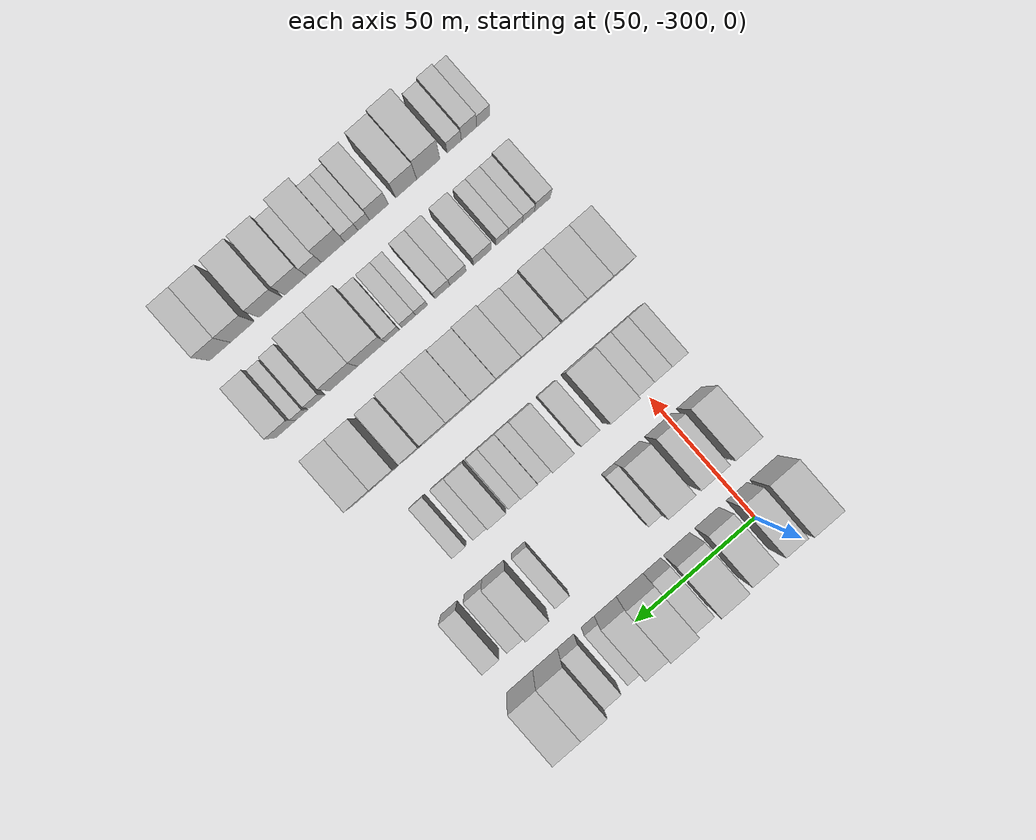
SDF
<sdf version="1.6">
 <world name="default">
  <model name="building_22">
   <static>1</static>
   <pose>50.0000 -312.4262 0 0.000000 0.000000 0.000000</pose>
   <link name="link">
    <pose>0 0 12.00 0 0 0</pose>
    <collision name="collision"><geometry><box><size>20.0000 11.8110 24.0000</size></box></geometry></collision>
    <visual name="visual">
     <cast_shadows>0</cast_shadows>
     <geometry><box><size>20.0000 11.8110 24.0000</size></box></geometry>
     <material>
      <script>
       <uri>model://HANNAS_wall/materials/scripts</uri>
       <uri>model://HANNAS_wall/materials/textures</uri>
       <name>vrc/HANNAS_wall</name>
      </script>
     </material>
    </visual>
   </link>
  </model>
  <model name="building_23">
   <static>1</static>
   <pose>50.0000 -301.1140 0 0.000000 0.000000 0.000000</pose>
   <link name="link">
    <pose>0 0 10.50 0 0 0</pose>
    <collision name="collision"><geometry><box><size>20.0000 8.8135 21.0000</size></box></geometry></collision>
    <visual name="visual">
     <cast_shadows>0</cast_shadows>
     <geometry><box><size>20.0000 8.8135 21.0000</size></box></geometry>
     <material>
      <script>
       <uri>model://HANNAS_wall/materials/scripts</uri>
       <uri>model://HANNAS_wall/materials/textures</uri>
       <name>vrc/HANNAS_wall</name>
      </script>
     </material>
    </visual>
   </link>
  </model>
  <model name="building_24">
   <static>1</static>
   <pose>50.0000 -288.6222 0 0.000000 0.000000 0.000000</pose>
   <link name="link">
    <pose>0 0 10.50 0 0 0</pose>
    <collision name="collision"><geometry><box><size>20.0000 10.1701 21.0000</size></box></geometry></collision>
    <visual name="visual">
     <cast_shadows>0</cast_shadows>
     <geometry><box><size>20.0000 10.1701 21.0000</size></box></geometry>
     <material>
      <script>
       <uri>model://HANNAS_wall/materials/scripts</uri>
       <uri>model://HANNAS_wall/materials/textures</uri>
       <name>vrc/HANNAS_wall</name>
      </script>
     </material>
    </visual>
   </link>
  </model>
  <model name="building_25">
   <static>1</static>
   <pose>50.0000 -276.0134 0 0.000000 0.000000 0.000000</pose>
   <link name="link">
    <pose>0 0 12.00 0 0 0</pose>
    <collision name="collision"><geometry><box><size>20.0000 11.0475 24.0000</size></box></geometry></collision>
    <visual name="visual">
     <cast_shadows>0</cast_shadows>
     <geometry><box><size>20.0000 11.0475 24.0000</size></box></geometry>
     <material>
      <script>
       <uri>model://HANNAS_wall/materials/scripts</uri>
       <uri>model://HANNAS_wall/materials/textures</uri>
       <name>vrc/HANNAS_wall</name>
      </script>
     </material>
    </visual>
   </link>
  </model>
  <model name="building_26">
   <static>1</static>
   <pose>50.0000 -265.7554 0 0.000000 0.000000 0.000000</pose>
   <link name="link">
    <pose>0 0 9.00 0 0 0</pose>
    <collision name="collision"><geometry><box><size>20.0000 7.4685 18.0000</size></box></geometry></collision>
    <visual name="visual">
     <cast_shadows>0</cast_shadows>
     <geometry><box><size>20.0000 7.4685 18.0000</size></box></geometry>
     <material>
      <script>
       <uri>model://HANNAS_wall/materials/scripts</uri>
       <uri>model://HANNAS_wall/materials/textures</uri>
       <name>vrc/HANNAS_wall</name>
      </script>
     </material>
    </visual>
   </link>
  </model>
  <model name="building_27">
   <static>1</static>
   <pose>50.0000 -256.4162 0 0.000000 0.000000 0.000000</pose>
   <link name="link">
    <pose>0 0 12.00 0 0 0</pose>
    <collision name="collision"><geometry><box><size>20.0000 11.2099 24.0000</size></box></geometry></collision>
    <visual name="visual">
     <cast_shadows>0</cast_shadows>
     <geometry><box><size>20.0000 11.2099 24.0000</size></box></geometry>
     <material>
      <script>
       <uri>model://HANNAS_wall/materials/scripts</uri>
       <uri>model://HANNAS_wall/materials/textures</uri>
       <name>vrc/HANNAS_wall</name>
      </script>
     </material>
    </visual>
   </link>
  </model>
  <model name="building_28">
   <static>1</static>
   <pose>50.0000 -246.1849 0 0.000000 0.000000 0.000000</pose>
   <link name="link">
    <pose>0 0 10.50 0 0 0</pose>
    <collision name="collision"><geometry><box><size>20.0000 9.2526 21.0000</size></box></geometry></collision>
    <visual name="visual">
     <cast_shadows>0</cast_shadows>
     <geometry><box><size>20.0000 9.2526 21.0000</size></box></geometry>
     <material>
      <script>
       <uri>model://HANNAS_wall/materials/scripts</uri>
       <uri>model://HANNAS_wall/materials/textures</uri>
       <name>vrc/HANNAS_wall</name>
      </script>
     </material>
    </visual>
   </link>
  </model>
  <model name="building_29">
   <static>1</static>
   <pose>50.0000 -238.8304 0 0.000000 0.000000 0.000000</pose>
   <link name="link">
    <pose>0 0 6.00 0 0 0</pose>
    <collision name="collision"><geometry><box><size>20.0000 5.4565 12.0000</size></box></geometry></collision>
    <visual name="visual">
     <cast_shadows>0</cast_shadows>
     <geometry><box><size>20.0000 5.4565 12.0000</size></box></geometry>
     <material>
      <script>
       <uri>model://HANNAS_wall/materials/scripts</uri>
       <uri>model://HANNAS_wall/materials/textures</uri>
       <name>vrc/HANNAS_wall</name>
      </script>
     </material>
    </visual>
   </link>
  </model>
  <model name="building_30">
   <static>1</static>
   <pose>50.0000 -229.6580 0 0.000000 0.000000 0.000000</pose>
   <link name="link">
    <pose>0 0 7.50 0 0 0</pose>
    <collision name="collision"><geometry><box><size>20.0000 6.8882 15.0000</size></box></geometry></collision>
    <visual name="visual">
     <cast_shadows>0</cast_shadows>
     <geometry><box><size>20.0000 6.8882 15.0000</size></box></geometry>
     <material>
      <script>
       <uri>model://HANNAS_wall/materials/scripts</uri>
       <uri>model://HANNAS_wall/materials/textures</uri>
       <name>vrc/HANNAS_wall</name>
      </script>
     </material>
    </visual>
   </link>
  </model>
  <model name="building_31">
   <static>1</static>
   <pose>50.0000 -221.0509 0 0.000000 0.000000 0.000000</pose>
   <link name="link">
    <pose>0 0 12.00 0 0 0</pose>
    <collision name="collision"><geometry><box><size>20.0000 10.3259 24.0000</size></box></geometry></collision>
    <visual name="visual">
     <cast_shadows>0</cast_shadows>
     <geometry><box><size>20.0000 10.3259 24.0000</size></box></geometry>
     <material>
      <script>
       <uri>model://HANNAS_wall/materials/scripts</uri>
       <uri>model://HANNAS_wall/materials/textures</uri>
       <name>vrc/HANNAS_wall</name>
      </script>
     </material>
    </visual>
   </link>
  </model>
  <model name="building_32">
   <static>1</static>
   <pose>50.0000 -210.4008 0 0.000000 0.000000 0.000000</pose>
   <link name="link">
    <pose>0 0 12.00 0 0 0</pose>
    <collision name="collision"><geometry><box><size>20.0000 10.9744 24.0000</size></box></geometry></collision>
    <visual name="visual">
     <cast_shadows>0</cast_shadows>
     <geometry><box><size>20.0000 10.9744 24.0000</size></box></geometry>
     <material>
      <script>
       <uri>model://HANNAS_wall/materials/scripts</uri>
       <uri>model://HANNAS_wall/materials/textures</uri>
       <name>vrc/HANNAS_wall</name>
      </script>
     </material>
    </visual>
   </link>
  </model>
  <model name="building_140">
   <static>1</static>
   <pose>82.0000 -309.2370 0 0.000000 0.000000 0.000000</pose>
   <link name="link">
    <pose>0 0 12.00 0 0 0</pose>
    <collision name="collision"><geometry><box><size>20.0000 10.5395 24.0000</size></box></geometry></collision>
    <visual name="visual">
     <cast_shadows>0</cast_shadows>
     <geometry><box><size>20.0000 10.5395 24.0000</size></box></geometry>
     <material>
      <script>
       <uri>model://HANNAS_wall/materials/scripts</uri>
       <uri>model://HANNAS_wall/materials/textures</uri>
       <name>vrc/HANNAS_wall</name>
      </script>
     </material>
    </visual>
   </link>
  </model>
  <model name="building_141">
   <static>1</static>
   <pose>82.0000 -296.2965 0 0.000000 0.000000 0.000000</pose>
   <link name="link">
    <pose>0 0 12.00 0 0 0</pose>
    <collision name="collision"><geometry><box><size>20.0000 11.3414 24.0000</size></box></geometry></collision>
    <visual name="visual">
     <cast_shadows>0</cast_shadows>
     <geometry><box><size>20.0000 11.3414 24.0000</size></box></geometry>
     <material>
      <script>
       <uri>model://HANNAS_wall/materials/scripts</uri>
       <uri>model://HANNAS_wall/materials/textures</uri>
       <name>vrc/HANNAS_wall</name>
      </script>
     </material>
    </visual>
   </link>
  </model>
  <model name="building_142">
   <static>1</static>
   <pose>82.0000 -283.2624 0 0.000000 0.000000 0.000000</pose>
   <link name="link">
    <pose>0 0 12.00 0 0 0</pose>
    <collision name="collision"><geometry><box><size>20.0000 10.7268 24.0000</size></box></geometry></collision>
    <visual name="visual">
     <cast_shadows>0</cast_shadows>
     <geometry><box><size>20.0000 10.7268 24.0000</size></box></geometry>
     <material>
      <script>
       <uri>model://HANNAS_wall/materials/scripts</uri>
       <uri>model://HANNAS_wall/materials/textures</uri>
       <name>vrc/HANNAS_wall</name>
      </script>
     </material>
    </visual>
   </link>
  </model>
  <model name="building_143">
   <static>1</static>
   <pose>82.0000 -275.2255 0 0.000000 0.000000 0.000000</pose>
   <link name="link">
    <pose>0 0 6.00 0 0 0</pose>
    <collision name="collision"><geometry><box><size>20.0000 5.3471 12.0000</size></box></geometry></collision>
    <visual name="visual">
     <cast_shadows>0</cast_shadows>
     <geometry><box><size>20.0000 5.3471 12.0000</size></box></geometry>
     <material>
      <script>
       <uri>model://HANNAS_wall/materials/scripts</uri>
       <uri>model://HANNAS_wall/materials/textures</uri>
       <name>vrc/HANNAS_wall</name>
      </script>
     </material>
    </visual>
   </link>
  </model>
  <model name="building_144">
   <static>1</static>
   <pose>82.0000 -237.7624 0 0.000000 0.000000 0.000000</pose>
   <link name="link">
    <pose>0 0 6.00 0 0 0</pose>
    <collision name="collision"><geometry><box><size>20.0000 5.8597 12.0000</size></box></geometry></collision>
    <visual name="visual">
     <cast_shadows>0</cast_shadows>
     <geometry><box><size>20.0000 5.8597 12.0000</size></box></geometry>
     <material>
      <script>
       <uri>model://HANNAS_wall/materials/scripts</uri>
       <uri>model://HANNAS_wall/materials/textures</uri>
       <name>vrc/HANNAS_wall</name>
      </script>
     </material>
    </visual>
   </link>
  </model>
  <model name="building_145">
   <static>1</static>
   <pose>82.0000 -227.2160 0 0.000000 0.000000 0.000000</pose>
   <link name="link">
    <pose>0 0 10.50 0 0 0</pose>
    <collision name="collision"><geometry><box><size>20.0000 9.2331 21.0000</size></box></geometry></collision>
    <visual name="visual">
     <cast_shadows>0</cast_shadows>
     <geometry><box><size>20.0000 9.2331 21.0000</size></box></geometry>
     <material>
      <script>
       <uri>model://HANNAS_wall/materials/scripts</uri>
       <uri>model://HANNAS_wall/materials/textures</uri>
       <name>vrc/HANNAS_wall</name>
      </script>
     </material>
    </visual>
   </link>
  </model>
  <model name="building_146">
   <static>1</static>
   <pose>82.0000 -218.9671 0 0.000000 0.000000 0.000000</pose>
   <link name="link">
    <pose>0 0 7.50 0 0 0</pose>
    <collision name="collision"><geometry><box><size>20.0000 7.2647 15.0000</size></box></geometry></collision>
    <visual name="visual">
     <cast_shadows>0</cast_shadows>
     <geometry><box><size>20.0000 7.2647 15.0000</size></box></geometry>
     <material>
      <script>
       <uri>model://HANNAS_wall/materials/scripts</uri>
       <uri>model://HANNAS_wall/materials/textures</uri>
       <name>vrc/HANNAS_wall</name>
      </script>
     </material>
    </visual>
   </link>
  </model>
  <model name="building_147">
   <static>1</static>
   <pose>82.0000 -208.8816 0 0.000000 0.000000 0.000000</pose>
   <link name="link">
    <pose>0 0 7.50 0 0 0</pose>
    <collision name="collision"><geometry><box><size>20.0000 6.9063 15.0000</size></box></geometry></collision>
    <visual name="visual">
     <cast_shadows>0</cast_shadows>
     <geometry><box><size>20.0000 6.9063 15.0000</size></box></geometry>
     <material>
      <script>
       <uri>model://HANNAS_wall/materials/scripts</uri>
       <uri>model://HANNAS_wall/materials/textures</uri>
       <name>vrc/HANNAS_wall</name>
      </script>
     </material>
    </visual>
   </link>
  </model>
  <model name="building_262">
   <static>1</static>
   <pose>114.0000 -312.6265 0 0.000000 0.000000 0.000000</pose>
   <link name="link">
    <pose>0 0 7.50 0 0 0</pose>
    <collision name="collision"><geometry><box><size>20.0000 6.4232 15.0000</size></box></geometry></collision>
    <visual name="visual">
     <cast_shadows>0</cast_shadows>
     <geometry><box><size>20.0000 6.4232 15.0000</size></box></geometry>
     <material>
      <script>
       <uri>model://HANNAS_wall/materials/scripts</uri>
       <uri>model://HANNAS_wall/materials/textures</uri>
       <name>vrc/HANNAS_wall</name>
      </script>
     </material>
    </visual>
   </link>
  </model>
  <model name="building_263">
   <static>1</static>
   <pose>114.0000 -305.9124 0 0.000000 0.000000 0.000000</pose>
   <link name="link">
    <pose>0 0 7.50 0 0 0</pose>
    <collision name="collision"><geometry><box><size>20.0000 7.0049 15.0000</size></box></geometry></collision>
    <visual name="visual">
     <cast_shadows>0</cast_shadows>
     <geometry><box><size>20.0000 7.0049 15.0000</size></box></geometry>
     <material>
      <script>
       <uri>model://HANNAS_wall/materials/scripts</uri>
       <uri>model://HANNAS_wall/materials/textures</uri>
       <name>vrc/HANNAS_wall</name>
      </script>
     </material>
    </visual>
   </link>
  </model>
  <model name="building_264">
   <static>1</static>
   <pose>114.0000 -298.7266 0 0.000000 0.000000 0.000000</pose>
   <link name="link">
    <pose>0 0 7.50 0 0 0</pose>
    <collision name="collision"><geometry><box><size>20.0000 7.3666 15.0000</size></box></geometry></collision>
    <visual name="visual">
     <cast_shadows>0</cast_shadows>
     <geometry><box><size>20.0000 7.3666 15.0000</size></box></geometry>
     <material>
      <script>
       <uri>model://HANNAS_wall/materials/scripts</uri>
       <uri>model://HANNAS_wall/materials/textures</uri>
       <name>vrc/HANNAS_wall</name>
      </script>
     </material>
    </visual>
   </link>
  </model>
  <model name="building_265">
   <static>1</static>
   <pose>114.0000 -289.2796 0 0.000000 0.000000 0.000000</pose>
   <link name="link">
    <pose>0 0 12.00 0 0 0</pose>
    <collision name="collision"><geometry><box><size>20.0000 11.5275 24.0000</size></box></geometry></collision>
    <visual name="visual">
     <cast_shadows>0</cast_shadows>
     <geometry><box><size>20.0000 11.5275 24.0000</size></box></geometry>
     <material>
      <script>
       <uri>model://HANNAS_wall/materials/scripts</uri>
       <uri>model://HANNAS_wall/materials/textures</uri>
       <name>vrc/HANNAS_wall</name>
      </script>
     </material>
    </visual>
   </link>
  </model>
  <model name="building_266">
   <static>1</static>
   <pose>114.0000 -276.7928 0 0.000000 0.000000 0.000000</pose>
   <link name="link">
    <pose>0 0 7.50 0 0 0</pose>
    <collision name="collision"><geometry><box><size>20.0000 7.4461 15.0000</size></box></geometry></collision>
    <visual name="visual">
     <cast_shadows>0</cast_shadows>
     <geometry><box><size>20.0000 7.4461 15.0000</size></box></geometry>
     <material>
      <script>
       <uri>model://HANNAS_wall/materials/scripts</uri>
       <uri>model://HANNAS_wall/materials/textures</uri>
       <name>vrc/HANNAS_wall</name>
      </script>
     </material>
    </visual>
   </link>
  </model>
  <model name="building_267">
   <static>1</static>
   <pose>114.0000 -265.7358 0 0.000000 0.000000 0.000000</pose>
   <link name="link">
    <pose>0 0 9.00 0 0 0</pose>
    <collision name="collision"><geometry><box><size>20.0000 8.6678 18.0000</size></box></geometry></collision>
    <visual name="visual">
     <cast_shadows>0</cast_shadows>
     <geometry><box><size>20.0000 8.6678 18.0000</size></box></geometry>
     <material>
      <script>
       <uri>model://HANNAS_wall/materials/scripts</uri>
       <uri>model://HANNAS_wall/materials/textures</uri>
       <name>vrc/HANNAS_wall</name>
      </script>
     </material>
    </visual>
   </link>
  </model>
  <model name="building_268">
   <static>1</static>
   <pose>114.0000 -258.5950 0 0.000000 0.000000 0.000000</pose>
   <link name="link">
    <pose>0 0 6.00 0 0 0</pose>
    <collision name="collision"><geometry><box><size>20.0000 5.6139 12.0000</size></box></geometry></collision>
    <visual name="visual">
     <cast_shadows>0</cast_shadows>
     <geometry><box><size>20.0000 5.6139 12.0000</size></box></geometry>
     <material>
      <script>
       <uri>model://HANNAS_wall/materials/scripts</uri>
       <uri>model://HANNAS_wall/materials/textures</uri>
       <name>vrc/HANNAS_wall</name>
      </script>
     </material>
    </visual>
   </link>
  </model>
  <model name="building_269">
   <static>1</static>
   <pose>114.0000 -252.3828 0 0.000000 0.000000 0.000000</pose>
   <link name="link">
    <pose>0 0 7.50 0 0 0</pose>
    <collision name="collision"><geometry><box><size>20.0000 6.8105 15.0000</size></box></geometry></collision>
    <visual name="visual">
     <cast_shadows>0</cast_shadows>
     <geometry><box><size>20.0000 6.8105 15.0000</size></box></geometry>
     <material>
      <script>
       <uri>model://HANNAS_wall/materials/scripts</uri>
       <uri>model://HANNAS_wall/materials/textures</uri>
       <name>vrc/HANNAS_wall</name>
      </script>
     </material>
    </visual>
   </link>
  </model>
  <model name="building_270">
   <static>1</static>
   <pose>114.0000 -246.4916 0 0.000000 0.000000 0.000000</pose>
   <link name="link">
    <pose>0 0 6.00 0 0 0</pose>
    <collision name="collision"><geometry><box><size>20.0000 4.9719 12.0000</size></box></geometry></collision>
    <visual name="visual">
     <cast_shadows>0</cast_shadows>
     <geometry><box><size>20.0000 4.9719 12.0000</size></box></geometry>
     <material>
      <script>
       <uri>model://HANNAS_wall/materials/scripts</uri>
       <uri>model://HANNAS_wall/materials/textures</uri>
       <name>vrc/HANNAS_wall</name>
      </script>
     </material>
    </visual>
   </link>
  </model>
  <model name="building_271">
   <static>1</static>
   <pose>114.0000 -239.3263 0 0.000000 0.000000 0.000000</pose>
   <link name="link">
    <pose>0 0 9.00 0 0 0</pose>
    <collision name="collision"><geometry><box><size>20.0000 7.3589 18.0000</size></box></geometry></collision>
    <visual name="visual">
     <cast_shadows>0</cast_shadows>
     <geometry><box><size>20.0000 7.3589 18.0000</size></box></geometry>
     <material>
      <script>
       <uri>model://HANNAS_wall/materials/scripts</uri>
       <uri>model://HANNAS_wall/materials/textures</uri>
       <name>vrc/HANNAS_wall</name>
      </script>
     </material>
    </visual>
   </link>
  </model>
  <model name="building_272">
   <static>1</static>
   <pose>114.0000 -232.7010 0 0.000000 0.000000 0.000000</pose>
   <link name="link">
    <pose>0 0 6.00 0 0 0</pose>
    <collision name="collision"><geometry><box><size>20.0000 5.8915 12.0000</size></box></geometry></collision>
    <visual name="visual">
     <cast_shadows>0</cast_shadows>
     <geometry><box><size>20.0000 5.8915 12.0000</size></box></geometry>
     <material>
      <script>
       <uri>model://HANNAS_wall/materials/scripts</uri>
       <uri>model://HANNAS_wall/materials/textures</uri>
       <name>vrc/HANNAS_wall</name>
      </script>
     </material>
    </visual>
   </link>
  </model>
  <model name="building_273">
   <static>1</static>
   <pose>114.0000 -223.9916 0 0.000000 0.000000 0.000000</pose>
   <link name="link">
    <pose>0 0 6.00 0 0 0</pose>
    <collision name="collision"><geometry><box><size>20.0000 5.5273 12.0000</size></box></geometry></collision>
    <visual name="visual">
     <cast_shadows>0</cast_shadows>
     <geometry><box><size>20.0000 5.5273 12.0000</size></box></geometry>
     <material>
      <script>
       <uri>model://HANNAS_wall/materials/scripts</uri>
       <uri>model://HANNAS_wall/materials/textures</uri>
       <name>vrc/HANNAS_wall</name>
      </script>
     </material>
    </visual>
   </link>
  </model>
  <model name="building_377">
   <static>1</static>
   <pose>146.0000 -317.5146 0 0.000000 0.000000 0.000000</pose>
   <link name="link">
    <pose>0 0 10.50 0 0 0</pose>
    <collision name="collision"><geometry><box><size>20.0000 8.6749 21.0000</size></box></geometry></collision>
    <visual name="visual">
     <cast_shadows>0</cast_shadows>
     <geometry><box><size>20.0000 8.6749 21.0000</size></box></geometry>
     <material>
      <script>
       <uri>model://HANNAS_wall/materials/scripts</uri>
       <uri>model://HANNAS_wall/materials/textures</uri>
       <name>vrc/HANNAS_wall</name>
      </script>
     </material>
    </visual>
   </link>
  </model>
  <model name="building_378">
   <static>1</static>
   <pose>146.0000 -308.0333 0 0.000000 0.000000 0.000000</pose>
   <link name="link">
    <pose>0 0 10.50 0 0 0</pose>
    <collision name="collision"><geometry><box><size>20.0000 10.2877 21.0000</size></box></geometry></collision>
    <visual name="visual">
     <cast_shadows>0</cast_shadows>
     <geometry><box><size>20.0000 10.2877 21.0000</size></box></geometry>
     <material>
      <script>
       <uri>model://HANNAS_wall/materials/scripts</uri>
       <uri>model://HANNAS_wall/materials/textures</uri>
       <name>vrc/HANNAS_wall</name>
      </script>
     </material>
    </visual>
   </link>
  </model>
  <model name="building_379">
   <static>1</static>
   <pose>146.0000 -297.9493 0 0.000000 0.000000 0.000000</pose>
   <link name="link">
    <pose>0 0 10.50 0 0 0</pose>
    <collision name="collision"><geometry><box><size>20.0000 9.8805 21.0000</size></box></geometry></collision>
    <visual name="visual">
     <cast_shadows>0</cast_shadows>
     <geometry><box><size>20.0000 9.8805 21.0000</size></box></geometry>
     <material>
      <script>
       <uri>model://HANNAS_wall/materials/scripts</uri>
       <uri>model://HANNAS_wall/materials/textures</uri>
       <name>vrc/HANNAS_wall</name>
      </script>
     </material>
    </visual>
   </link>
  </model>
  <model name="building_380">
   <static>1</static>
   <pose>146.0000 -289.3457 0 0.000000 0.000000 0.000000</pose>
   <link name="link">
    <pose>0 0 7.50 0 0 0</pose>
    <collision name="collision"><geometry><box><size>20.0000 7.3266 15.0000</size></box></geometry></collision>
    <visual name="visual">
     <cast_shadows>0</cast_shadows>
     <geometry><box><size>20.0000 7.3266 15.0000</size></box></geometry>
     <material>
      <script>
       <uri>model://HANNAS_wall/materials/scripts</uri>
       <uri>model://HANNAS_wall/materials/textures</uri>
       <name>vrc/HANNAS_wall</name>
      </script>
     </material>
    </visual>
   </link>
  </model>
  <model name="building_381">
   <static>1</static>
   <pose>146.0000 -281.2188 0 0.000000 0.000000 0.000000</pose>
   <link name="link">
    <pose>0 0 9.00 0 0 0</pose>
    <collision name="collision"><geometry><box><size>20.0000 8.9271 18.0000</size></box></geometry></collision>
    <visual name="visual">
     <cast_shadows>0</cast_shadows>
     <geometry><box><size>20.0000 8.9271 18.0000</size></box></geometry>
     <material>
      <script>
       <uri>model://HANNAS_wall/materials/scripts</uri>
       <uri>model://HANNAS_wall/materials/textures</uri>
       <name>vrc/HANNAS_wall</name>
      </script>
     </material>
    </visual>
   </link>
  </model>
  <model name="building_382">
   <static>1</static>
   <pose>146.0000 -271.8786 0 0.000000 0.000000 0.000000</pose>
   <link name="link">
    <pose>0 0 12.00 0 0 0</pose>
    <collision name="collision"><geometry><box><size>20.0000 9.7534 24.0000</size></box></geometry></collision>
    <visual name="visual">
     <cast_shadows>0</cast_shadows>
     <geometry><box><size>20.0000 9.7534 24.0000</size></box></geometry>
     <material>
      <script>
       <uri>model://HANNAS_wall/materials/scripts</uri>
       <uri>model://HANNAS_wall/materials/textures</uri>
       <name>vrc/HANNAS_wall</name>
      </script>
     </material>
    </visual>
   </link>
  </model>
  <model name="building_383">
   <static>1</static>
   <pose>146.0000 -262.0621 0 0.000000 0.000000 0.000000</pose>
   <link name="link">
    <pose>0 0 10.50 0 0 0</pose>
    <collision name="collision"><geometry><box><size>20.0000 9.8796 21.0000</size></box></geometry></collision>
    <visual name="visual">
     <cast_shadows>0</cast_shadows>
     <geometry><box><size>20.0000 9.8796 21.0000</size></box></geometry>
     <material>
      <script>
       <uri>model://HANNAS_wall/materials/scripts</uri>
       <uri>model://HANNAS_wall/materials/textures</uri>
       <name>vrc/HANNAS_wall</name>
      </script>
     </material>
    </visual>
   </link>
  </model>
  <model name="building_384">
   <static>1</static>
   <pose>146.0000 -252.2711 0 0.000000 0.000000 0.000000</pose>
   <link name="link">
    <pose>0 0 12.00 0 0 0</pose>
    <collision name="collision"><geometry><box><size>20.0000 9.7024 24.0000</size></box></geometry></collision>
    <visual name="visual">
     <cast_shadows>0</cast_shadows>
     <geometry><box><size>20.0000 9.7024 24.0000</size></box></geometry>
     <material>
      <script>
       <uri>model://HANNAS_wall/materials/scripts</uri>
       <uri>model://HANNAS_wall/materials/textures</uri>
       <name>vrc/HANNAS_wall</name>
      </script>
     </material>
    </visual>
   </link>
  </model>
  <model name="building_385">
   <static>1</static>
   <pose>146.0000 -242.2406 0 0.000000 0.000000 0.000000</pose>
   <link name="link">
    <pose>0 0 12.00 0 0 0</pose>
    <collision name="collision"><geometry><box><size>20.0000 10.3586 24.0000</size></box></geometry></collision>
    <visual name="visual">
     <cast_shadows>0</cast_shadows>
     <geometry><box><size>20.0000 10.3586 24.0000</size></box></geometry>
     <material>
      <script>
       <uri>model://HANNAS_wall/materials/scripts</uri>
       <uri>model://HANNAS_wall/materials/textures</uri>
       <name>vrc/HANNAS_wall</name>
      </script>
     </material>
    </visual>
   </link>
  </model>
  <model name="building_386">
   <static>1</static>
   <pose>146.0000 -232.1941 0 0.000000 0.000000 0.000000</pose>
   <link name="link">
    <pose>0 0 9.00 0 0 0</pose>
    <collision name="collision"><geometry><box><size>20.0000 7.7344 18.0000</size></box></geometry></collision>
    <visual name="visual">
     <cast_shadows>0</cast_shadows>
     <geometry><box><size>20.0000 7.7344 18.0000</size></box></geometry>
     <material>
      <script>
       <uri>model://HANNAS_wall/materials/scripts</uri>
       <uri>model://HANNAS_wall/materials/textures</uri>
       <name>vrc/HANNAS_wall</name>
      </script>
     </material>
    </visual>
   </link>
  </model>
  <model name="building_387">
   <static>1</static>
   <pose>146.0000 -221.7031 0 0.000000 0.000000 0.000000</pose>
   <link name="link">
    <pose>0 0 10.50 0 0 0</pose>
    <collision name="collision"><geometry><box><size>20.0000 9.2476 21.0000</size></box></geometry></collision>
    <visual name="visual">
     <cast_shadows>0</cast_shadows>
     <geometry><box><size>20.0000 9.2476 21.0000</size></box></geometry>
     <material>
      <script>
       <uri>model://HANNAS_wall/materials/scripts</uri>
       <uri>model://HANNAS_wall/materials/textures</uri>
       <name>vrc/HANNAS_wall</name>
      </script>
     </material>
    </visual>
   </link>
  </model>
  <model name="building_388">
   <static>1</static>
   <pose>146.0000 -212.2195 0 0.000000 0.000000 0.000000</pose>
   <link name="link">
    <pose>0 0 10.50 0 0 0</pose>
    <collision name="collision"><geometry><box><size>20.0000 9.7196 21.0000</size></box></geometry></collision>
    <visual name="visual">
     <cast_shadows>0</cast_shadows>
     <geometry><box><size>20.0000 9.7196 21.0000</size></box></geometry>
     <material>
      <script>
       <uri>model://HANNAS_wall/materials/scripts</uri>
       <uri>model://HANNAS_wall/materials/textures</uri>
       <name>vrc/HANNAS_wall</name>
      </script>
     </material>
    </visual>
   </link>
  </model>
  <model name="building_491">
   <static>1</static>
   <pose>178.0000 -314.2209 0 0.000000 0.000000 0.000000</pose>
   <link name="link">
    <pose>0 0 7.50 0 0 0</pose>
    <collision name="collision"><geometry><box><size>20.0000 6.5862 15.0000</size></box></geometry></collision>
    <visual name="visual">
     <cast_shadows>0</cast_shadows>
     <geometry><box><size>20.0000 6.5862 15.0000</size></box></geometry>
     <material>
      <script>
       <uri>model://HANNAS_wall/materials/scripts</uri>
       <uri>model://HANNAS_wall/materials/textures</uri>
       <name>vrc/HANNAS_wall</name>
      </script>
     </material>
    </visual>
   </link>
  </model>
  <model name="building_492">
   <static>1</static>
   <pose>178.0000 -308.4268 0 0.000000 0.000000 0.000000</pose>
   <link name="link">
    <pose>0 0 6.00 0 0 0</pose>
    <collision name="collision"><geometry><box><size>20.0000 5.0020 12.0000</size></box></geometry></collision>
    <visual name="visual">
     <cast_shadows>0</cast_shadows>
     <geometry><box><size>20.0000 5.0020 12.0000</size></box></geometry>
     <material>
      <script>
       <uri>model://HANNAS_wall/materials/scripts</uri>
       <uri>model://HANNAS_wall/materials/textures</uri>
       <name>vrc/HANNAS_wall</name>
      </script>
     </material>
    </visual>
   </link>
  </model>
  <model name="building_493">
   <static>1</static>
   <pose>178.0000 -302.9962 0 0.000000 0.000000 0.000000</pose>
   <link name="link">
    <pose>0 0 6.00 0 0 0</pose>
    <collision name="collision"><geometry><box><size>20.0000 5.8593 12.0000</size></box></geometry></collision>
    <visual name="visual">
     <cast_shadows>0</cast_shadows>
     <geometry><box><size>20.0000 5.8593 12.0000</size></box></geometry>
     <material>
      <script>
       <uri>model://HANNAS_wall/materials/scripts</uri>
       <uri>model://HANNAS_wall/materials/textures</uri>
       <name>vrc/HANNAS_wall</name>
      </script>
     </material>
    </visual>
   </link>
  </model>
  <model name="building_494">
   <static>1</static>
   <pose>178.0000 -297.5631 0 0.000000 0.000000 0.000000</pose>
   <link name="link">
    <pose>0 0 6.00 0 0 0</pose>
    <collision name="collision"><geometry><box><size>20.0000 5.0069 12.0000</size></box></geometry></collision>
    <visual name="visual">
     <cast_shadows>0</cast_shadows>
     <geometry><box><size>20.0000 5.0069 12.0000</size></box></geometry>
     <material>
      <script>
       <uri>model://HANNAS_wall/materials/scripts</uri>
       <uri>model://HANNAS_wall/materials/textures</uri>
       <name>vrc/HANNAS_wall</name>
      </script>
     </material>
    </visual>
   </link>
  </model>
  <model name="building_495">
   <static>1</static>
   <pose>178.0000 -289.3323 0 0.000000 0.000000 0.000000</pose>
   <link name="link">
    <pose>0 0 7.50 0 0 0</pose>
    <collision name="collision"><geometry><box><size>20.0000 7.4549 15.0000</size></box></geometry></collision>
    <visual name="visual">
     <cast_shadows>0</cast_shadows>
     <geometry><box><size>20.0000 7.4549 15.0000</size></box></geometry>
     <material>
      <script>
       <uri>model://HANNAS_wall/materials/scripts</uri>
       <uri>model://HANNAS_wall/materials/textures</uri>
       <name>vrc/HANNAS_wall</name>
      </script>
     </material>
    </visual>
   </link>
  </model>
  <model name="building_496">
   <static>1</static>
   <pose>178.0000 -279.2060 0 0.000000 0.000000 0.000000</pose>
   <link name="link">
    <pose>0 0 7.50 0 0 0</pose>
    <collision name="collision"><geometry><box><size>20.0000 6.7976 15.0000</size></box></geometry></collision>
    <visual name="visual">
     <cast_shadows>0</cast_shadows>
     <geometry><box><size>20.0000 6.7976 15.0000</size></box></geometry>
     <material>
      <script>
       <uri>model://HANNAS_wall/materials/scripts</uri>
       <uri>model://HANNAS_wall/materials/textures</uri>
       <name>vrc/HANNAS_wall</name>
      </script>
     </material>
    </visual>
   </link>
  </model>
  <model name="building_497">
   <static>1</static>
   <pose>178.0000 -272.6910 0 0.000000 0.000000 0.000000</pose>
   <link name="link">
    <pose>0 0 7.50 0 0 0</pose>
    <collision name="collision"><geometry><box><size>20.0000 6.2325 15.0000</size></box></geometry></collision>
    <visual name="visual">
     <cast_shadows>0</cast_shadows>
     <geometry><box><size>20.0000 6.2325 15.0000</size></box></geometry>
     <material>
      <script>
       <uri>model://HANNAS_wall/materials/scripts</uri>
       <uri>model://HANNAS_wall/materials/textures</uri>
       <name>vrc/HANNAS_wall</name>
      </script>
     </material>
    </visual>
   </link>
  </model>
  <model name="building_498">
   <static>1</static>
   <pose>178.0000 -264.1224 0 0.000000 0.000000 0.000000</pose>
   <link name="link">
    <pose>0 0 6.00 0 0 0</pose>
    <collision name="collision"><geometry><box><size>20.0000 4.9047 12.0000</size></box></geometry></collision>
    <visual name="visual">
     <cast_shadows>0</cast_shadows>
     <geometry><box><size>20.0000 4.9047 12.0000</size></box></geometry>
     <material>
      <script>
       <uri>model://HANNAS_wall/materials/scripts</uri>
       <uri>model://HANNAS_wall/materials/textures</uri>
       <name>vrc/HANNAS_wall</name>
      </script>
     </material>
    </visual>
   </link>
  </model>
  <model name="building_499">
   <static>1</static>
   <pose>178.0000 -258.7713 0 0.000000 0.000000 0.000000</pose>
   <link name="link">
    <pose>0 0 6.00 0 0 0</pose>
    <collision name="collision"><geometry><box><size>20.0000 5.7974 12.0000</size></box></geometry></collision>
    <visual name="visual">
     <cast_shadows>0</cast_shadows>
     <geometry><box><size>20.0000 5.7974 12.0000</size></box></geometry>
     <material>
      <script>
       <uri>model://HANNAS_wall/materials/scripts</uri>
       <uri>model://HANNAS_wall/materials/textures</uri>
       <name>vrc/HANNAS_wall</name>
      </script>
     </material>
    </visual>
   </link>
  </model>
  <model name="building_500">
   <static>1</static>
   <pose>178.0000 -251.9216 0 0.000000 0.000000 0.000000</pose>
   <link name="link">
    <pose>0 0 6.00 0 0 0</pose>
    <collision name="collision"><geometry><box><size>20.0000 5.9020 12.0000</size></box></geometry></collision>
    <visual name="visual">
     <cast_shadows>0</cast_shadows>
     <geometry><box><size>20.0000 5.9020 12.0000</size></box></geometry>
     <material>
      <script>
       <uri>model://HANNAS_wall/materials/scripts</uri>
       <uri>model://HANNAS_wall/materials/textures</uri>
       <name>vrc/HANNAS_wall</name>
      </script>
     </material>
    </visual>
   </link>
  </model>
  <model name="building_501">
   <static>1</static>
   <pose>178.0000 -243.1663 0 0.000000 0.000000 0.000000</pose>
   <link name="link">
    <pose>0 0 12.00 0 0 0</pose>
    <collision name="collision"><geometry><box><size>20.0000 11.6086 24.0000</size></box></geometry></collision>
    <visual name="visual">
     <cast_shadows>0</cast_shadows>
     <geometry><box><size>20.0000 11.6086 24.0000</size></box></geometry>
     <material>
      <script>
       <uri>model://HANNAS_wall/materials/scripts</uri>
       <uri>model://HANNAS_wall/materials/textures</uri>
       <name>vrc/HANNAS_wall</name>
      </script>
     </material>
    </visual>
   </link>
  </model>
  <model name="building_502">
   <static>1</static>
   <pose>178.0000 -231.5337 0 0.000000 0.000000 0.000000</pose>
   <link name="link">
    <pose>0 0 12.00 0 0 0</pose>
    <collision name="collision"><geometry><box><size>20.0000 11.6566 24.0000</size></box></geometry></collision>
    <visual name="visual">
     <cast_shadows>0</cast_shadows>
     <geometry><box><size>20.0000 11.6566 24.0000</size></box></geometry>
     <material>
      <script>
       <uri>model://HANNAS_wall/materials/scripts</uri>
       <uri>model://HANNAS_wall/materials/textures</uri>
       <name>vrc/HANNAS_wall</name>
      </script>
     </material>
    </visual>
   </link>
  </model>
  <model name="building_503">
   <static>1</static>
   <pose>178.0000 -220.6809 0 0.000000 0.000000 0.000000</pose>
   <link name="link">
    <pose>0 0 7.50 0 0 0</pose>
    <collision name="collision"><geometry><box><size>20.0000 6.0490 15.0000</size></box></geometry></collision>
    <visual name="visual">
     <cast_shadows>0</cast_shadows>
     <geometry><box><size>20.0000 6.0490 15.0000</size></box></geometry>
     <material>
      <script>
       <uri>model://HANNAS_wall/materials/scripts</uri>
       <uri>model://HANNAS_wall/materials/textures</uri>
       <name>vrc/HANNAS_wall</name>
      </script>
     </material>
    </visual>
   </link>
  </model>
  <model name="building_504">
   <static>1</static>
   <pose>178.0000 -214.2282 0 0.000000 0.000000 0.000000</pose>
   <link name="link">
    <pose>0 0 6.00 0 0 0</pose>
    <collision name="collision"><geometry><box><size>20.0000 4.8564 12.0000</size></box></geometry></collision>
    <visual name="visual">
     <cast_shadows>0</cast_shadows>
     <geometry><box><size>20.0000 4.8564 12.0000</size></box></geometry>
     <material>
      <script>
       <uri>model://HANNAS_wall/materials/scripts</uri>
       <uri>model://HANNAS_wall/materials/textures</uri>
       <name>vrc/HANNAS_wall</name>
      </script>
     </material>
    </visual>
   </link>
  </model>
  <model name="building_505">
   <static>1</static>
   <pose>178.0000 -207.5748 0 0.000000 0.000000 0.000000</pose>
   <link name="link">
    <pose>0 0 9.00 0 0 0</pose>
    <collision name="collision"><geometry><box><size>20.0000 8.4504 18.0000</size></box></geometry></collision>
    <visual name="visual">
     <cast_shadows>0</cast_shadows>
     <geometry><box><size>20.0000 8.4504 18.0000</size></box></geometry>
     <material>
      <script>
       <uri>model://HANNAS_wall/materials/scripts</uri>
       <uri>model://HANNAS_wall/materials/textures</uri>
       <name>vrc/HANNAS_wall</name>
      </script>
     </material>
    </visual>
   </link>
  </model>
  <model name="building_618">
   <static>1</static>
   <pose>210.0000 -317.6575 0 0.000000 0.000000 0.000000</pose>
   <link name="link">
    <pose>0 0 6.00 0 0 0</pose>
    <collision name="collision"><geometry><box><size>20.0000 5.4727 12.0000</size></box></geometry></collision>
    <visual name="visual">
     <cast_shadows>0</cast_shadows>
     <geometry><box><size>20.0000 5.4727 12.0000</size></box></geometry>
     <material>
      <script>
       <uri>model://HANNAS_wall/materials/scripts</uri>
       <uri>model://HANNAS_wall/materials/textures</uri>
       <name>vrc/HANNAS_wall</name>
      </script>
     </material>
    </visual>
   </link>
  </model>
  <model name="building_619">
   <static>1</static>
   <pose>210.0000 -311.7400 0 0.000000 0.000000 0.000000</pose>
   <link name="link">
    <pose>0 0 7.50 0 0 0</pose>
    <collision name="collision"><geometry><box><size>20.0000 6.3621 15.0000</size></box></geometry></collision>
    <visual name="visual">
     <cast_shadows>0</cast_shadows>
     <geometry><box><size>20.0000 6.3621 15.0000</size></box></geometry>
     <material>
      <script>
       <uri>model://HANNAS_wall/materials/scripts</uri>
       <uri>model://HANNAS_wall/materials/textures</uri>
       <name>vrc/HANNAS_wall</name>
      </script>
     </material>
    </visual>
   </link>
  </model>
  <model name="building_620">
   <static>1</static>
   <pose>210.0000 -305.5976 0 0.000000 0.000000 0.000000</pose>
   <link name="link">
    <pose>0 0 6.00 0 0 0</pose>
    <collision name="collision"><geometry><box><size>20.0000 5.9226 12.0000</size></box></geometry></collision>
    <visual name="visual">
     <cast_shadows>0</cast_shadows>
     <geometry><box><size>20.0000 5.9226 12.0000</size></box></geometry>
     <material>
      <script>
       <uri>model://HANNAS_wall/materials/scripts</uri>
       <uri>model://HANNAS_wall/materials/textures</uri>
       <name>vrc/HANNAS_wall</name>
      </script>
     </material>
    </visual>
   </link>
  </model>
  <model name="building_621">
   <static>1</static>
   <pose>210.0000 -294.7977 0 0.000000 0.000000 0.000000</pose>
   <link name="link">
    <pose>0 0 12.00 0 0 0</pose>
    <collision name="collision"><geometry><box><size>20.0000 9.6771 24.0000</size></box></geometry></collision>
    <visual name="visual">
     <cast_shadows>0</cast_shadows>
     <geometry><box><size>20.0000 9.6771 24.0000</size></box></geometry>
     <material>
      <script>
       <uri>model://HANNAS_wall/materials/scripts</uri>
       <uri>model://HANNAS_wall/materials/textures</uri>
       <name>vrc/HANNAS_wall</name>
      </script>
     </material>
    </visual>
   </link>
  </model>
  <model name="building_622">
   <static>1</static>
   <pose>210.0000 -285.5565 0 0.000000 0.000000 0.000000</pose>
   <link name="link">
    <pose>0 0 10.50 0 0 0</pose>
    <collision name="collision"><geometry><box><size>20.0000 8.8052 21.0000</size></box></geometry></collision>
    <visual name="visual">
     <cast_shadows>0</cast_shadows>
     <geometry><box><size>20.0000 8.8052 21.0000</size></box></geometry>
     <material>
      <script>
       <uri>model://HANNAS_wall/materials/scripts</uri>
       <uri>model://HANNAS_wall/materials/textures</uri>
       <name>vrc/HANNAS_wall</name>
      </script>
     </material>
    </visual>
   </link>
  </model>
  <model name="building_623">
   <static>1</static>
   <pose>210.0000 -274.2572 0 0.000000 0.000000 0.000000</pose>
   <link name="link">
    <pose>0 0 9.00 0 0 0</pose>
    <collision name="collision"><geometry><box><size>20.0000 7.7935 18.0000</size></box></geometry></collision>
    <visual name="visual">
     <cast_shadows>0</cast_shadows>
     <geometry><box><size>20.0000 7.7935 18.0000</size></box></geometry>
     <material>
      <script>
       <uri>model://HANNAS_wall/materials/scripts</uri>
       <uri>model://HANNAS_wall/materials/textures</uri>
       <name>vrc/HANNAS_wall</name>
      </script>
     </material>
    </visual>
   </link>
  </model>
  <model name="building_624">
   <static>1</static>
   <pose>210.0000 -267.9440 0 0.000000 0.000000 0.000000</pose>
   <link name="link">
    <pose>0 0 6.00 0 0 0</pose>
    <collision name="collision"><geometry><box><size>20.0000 4.8330 12.0000</size></box></geometry></collision>
    <visual name="visual">
     <cast_shadows>0</cast_shadows>
     <geometry><box><size>20.0000 4.8330 12.0000</size></box></geometry>
     <material>
      <script>
       <uri>model://HANNAS_wall/materials/scripts</uri>
       <uri>model://HANNAS_wall/materials/textures</uri>
       <name>vrc/HANNAS_wall</name>
      </script>
     </material>
    </visual>
   </link>
  </model>
  <model name="building_625">
   <static>1</static>
   <pose>210.0000 -262.7920 0 0.000000 0.000000 0.000000</pose>
   <link name="link">
    <pose>0 0 6.00 0 0 0</pose>
    <collision name="collision"><geometry><box><size>20.0000 5.4709 12.0000</size></box></geometry></collision>
    <visual name="visual">
     <cast_shadows>0</cast_shadows>
     <geometry><box><size>20.0000 5.4709 12.0000</size></box></geometry>
     <material>
      <script>
       <uri>model://HANNAS_wall/materials/scripts</uri>
       <uri>model://HANNAS_wall/materials/textures</uri>
       <name>vrc/HANNAS_wall</name>
      </script>
     </material>
    </visual>
   </link>
  </model>
  <model name="building_626">
   <static>1</static>
   <pose>210.0000 -255.1950 0 0.000000 0.000000 0.000000</pose>
   <link name="link">
    <pose>0 0 12.00 0 0 0</pose>
    <collision name="collision"><geometry><box><size>20.0000 9.7231 24.0000</size></box></geometry></collision>
    <visual name="visual">
     <cast_shadows>0</cast_shadows>
     <geometry><box><size>20.0000 9.7231 24.0000</size></box></geometry>
     <material>
      <script>
       <uri>model://HANNAS_wall/materials/scripts</uri>
       <uri>model://HANNAS_wall/materials/textures</uri>
       <name>vrc/HANNAS_wall</name>
      </script>
     </material>
    </visual>
   </link>
  </model>
  <model name="building_627">
   <static>1</static>
   <pose>210.0000 -247.1929 0 0.000000 0.000000 0.000000</pose>
   <link name="link">
    <pose>0 0 7.50 0 0 0</pose>
    <collision name="collision"><geometry><box><size>20.0000 6.2811 15.0000</size></box></geometry></collision>
    <visual name="visual">
     <cast_shadows>0</cast_shadows>
     <geometry><box><size>20.0000 6.2811 15.0000</size></box></geometry>
     <material>
      <script>
       <uri>model://HANNAS_wall/materials/scripts</uri>
       <uri>model://HANNAS_wall/materials/textures</uri>
       <name>vrc/HANNAS_wall</name>
      </script>
     </material>
    </visual>
   </link>
  </model>
  <model name="building_628">
   <static>1</static>
   <pose>210.0000 -239.4491 0 0.000000 0.000000 0.000000</pose>
   <link name="link">
    <pose>0 0 10.50 0 0 0</pose>
    <collision name="collision"><geometry><box><size>20.0000 9.2066 21.0000</size></box></geometry></collision>
    <visual name="visual">
     <cast_shadows>0</cast_shadows>
     <geometry><box><size>20.0000 9.2066 21.0000</size></box></geometry>
     <material>
      <script>
       <uri>model://HANNAS_wall/materials/scripts</uri>
       <uri>model://HANNAS_wall/materials/textures</uri>
       <name>vrc/HANNAS_wall</name>
      </script>
     </material>
    </visual>
   </link>
  </model>
  <model name="building_629">
   <static>1</static>
   <pose>210.0000 -229.0008 0 0.000000 0.000000 0.000000</pose>
   <link name="link">
    <pose>0 0 10.50 0 0 0</pose>
    <collision name="collision"><geometry><box><size>20.0000 9.6901 21.0000</size></box></geometry></collision>
    <visual name="visual">
     <cast_shadows>0</cast_shadows>
     <geometry><box><size>20.0000 9.6901 21.0000</size></box></geometry>
     <material>
      <script>
       <uri>model://HANNAS_wall/materials/scripts</uri>
       <uri>model://HANNAS_wall/materials/textures</uri>
       <name>vrc/HANNAS_wall</name>
      </script>
     </material>
    </visual>
   </link>
  </model>
  <model name="building_630">
   <static>1</static>
   <pose>210.0000 -217.1847 0 0.000000 0.000000 0.000000</pose>
   <link name="link">
    <pose>0 0 10.50 0 0 0</pose>
    <collision name="collision"><geometry><box><size>20.0000 9.9420 21.0000</size></box></geometry></collision>
    <visual name="visual">
     <cast_shadows>0</cast_shadows>
     <geometry><box><size>20.0000 9.9420 21.0000</size></box></geometry>
     <material>
      <script>
       <uri>model://HANNAS_wall/materials/scripts</uri>
       <uri>model://HANNAS_wall/materials/textures</uri>
       <name>vrc/HANNAS_wall</name>
      </script>
     </material>
    </visual>
   </link>
  </model>
  <model name="building_631">
   <static>1</static>
   <pose>210.0000 -207.8661 0 0.000000 0.000000 0.000000</pose>
   <link name="link">
    <pose>0 0 10.50 0 0 0</pose>
    <collision name="collision"><geometry><box><size>20.0000 8.6953 21.0000</size></box></geometry></collision>
    <visual name="visual">
     <cast_shadows>0</cast_shadows>
     <geometry><box><size>20.0000 8.6953 21.0000</size></box></geometry>
     <material>
      <script>
       <uri>model://HANNAS_wall/materials/scripts</uri>
       <uri>model://HANNAS_wall/materials/textures</uri>
       <name>vrc/HANNAS_wall</name>
      </script>
     </material>
    </visual>
   </link>
  </model>
 </world>
</sdf>
